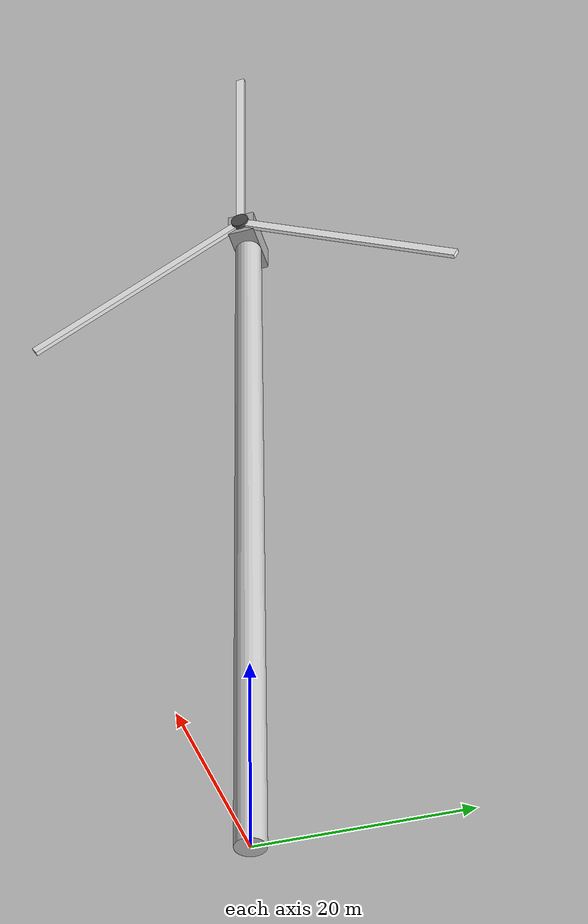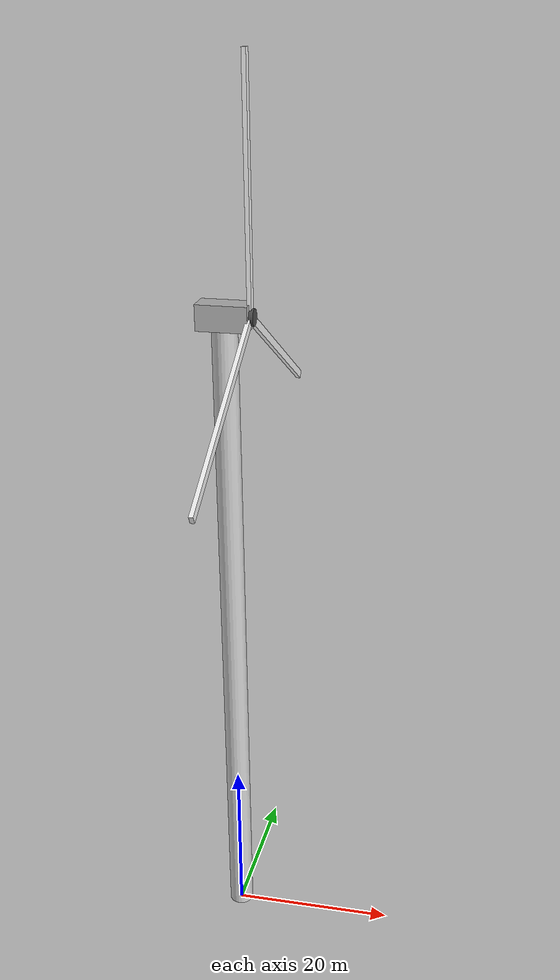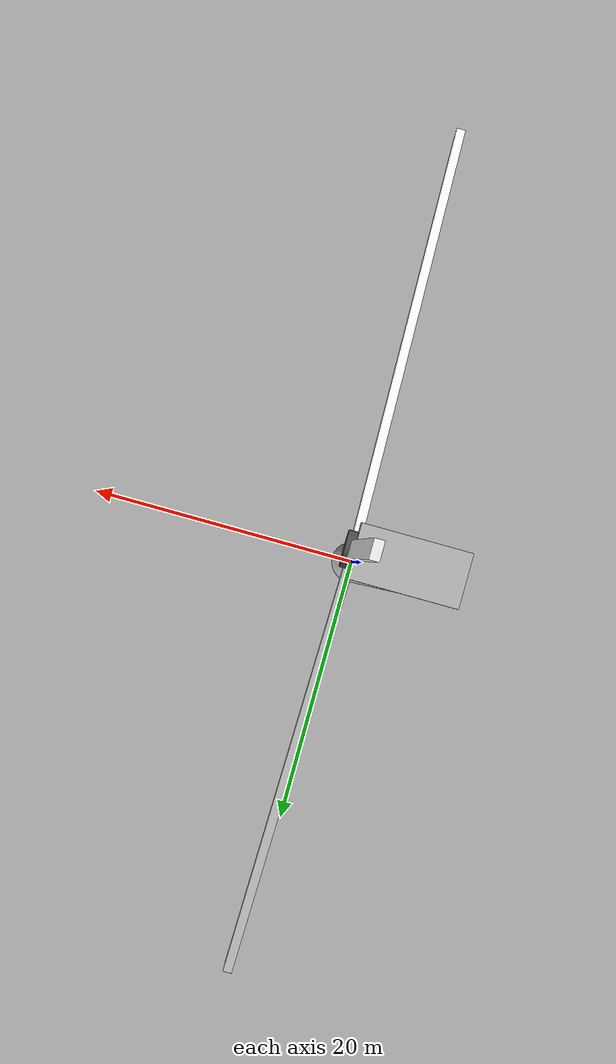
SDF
<?xml version="1.0"?>
<sdf version="1.9">
  <model name="wind_turbine80m">
    <!-- blade=28 -->
    <!-- hub_height=80 -->
    <pose>0 0 0 0 0 0</pose>
    <static>false</static>

    <!-- ===================== TORRE ===================== -->
    <link name="tower">
      <!-- x=0 y=0 z=hub_height/2 -->
      <pose>0 0 40 0 0 0</pose> <!-- Centro a mitad de altura -->
      <inertial>
        <!-- Masa muy alta para hacerla prácticamente inamovible -->
        <mass>100000</mass>
        <inertia>
          <ixx>83333333</ixx>
          <iyy>83333333</iyy>
          <izz>1000</izz>
        </inertia>
      </inertial>
      <!-- Colisión activa - el dron detectará el choque pero la torre no se moverá -->
      <collision name="collision">
        <geometry>
          <cylinder>
            <radius>1.5</radius>
            <length>80</length>
          </cylinder>
        </geometry>
        <surface>
          <friction>
            <ode>
              <mu>1.0</mu>
              <mu2>1.0</mu2>
            </ode>
          </friction>
          <contact>
            <ode>
              <kp>1000000.0</kp>  <!-- Rigidez muy alta -->
              <kd>100.0</kd>       <!-- Amortiguamiento -->
              <max_vel>0.01</max_vel>
              <min_depth>0.001</min_depth>
            </ode>
          </contact>
        </surface>
      </collision>
      <visual name="visual">
        <geometry>
          <cylinder>
            <radius>1.5</radius>
            <length>80</length>
          </cylinder>
        </geometry>
        <material>
          <ambient>0.8 0.8 0.8 1</ambient>
          <diffuse>0.8 0.8 0.8 1</diffuse>
        </material>
      </visual>
    </link>

    <!-- ===================== GÓNDOLA (Nacelle) ===================== -->
    <link name="nacelle">
      <!-- x=0 y=0 z=hub_height + 1.5 -->
      <pose>0 0 81.5 0 0 0</pose> <!-- Encima de la torre -->
      <inertial>
        <!-- Masa alta para estabilidad -->
        <mass>5000</mass>
        <inertia>
          <ixx>833.33</ixx>
          <iyy>833.33</iyy>
          <izz>833.33</izz>
        </inertia>
      </inertial>
      <!-- Colisión activa - detecta choques pero no se mueve -->
      <collision name="collision">
        <geometry>
          <box>
            <size>6 3 3</size>
          </box>
        </geometry>
        <surface>
          <friction>
            <ode>
              <mu>1.0</mu>
              <mu2>1.0</mu2>
            </ode>
          </friction>
          <contact>
            <ode>
              <kp>1000000.0</kp>
              <kd>100.0</kd>
              <max_vel>0.01</max_vel>
              <min_depth>0.001</min_depth>
            </ode>
          </contact>
        </surface>
      </collision>
      <visual name="visual">
        <geometry>
          <box>
            <size>6 3 3</size>
          </box>
        </geometry>
        <material>
          <ambient>0.7 0.7 0.7 1</ambient>
          <diffuse>0.7 0.7 0.7 1</diffuse>
        </material>
      </visual>
    </link>

    <!-- ===================== ROTOR (Hub + 3 Aspas como un solo cuerpo) ===================== -->
    <link name="rotor">
      <!-- x=3 y=0 z=hub_height + 1.5 -->
      <pose >3 0 81.5 0 0 0</pose> <!-- Delante de góndola-->
      <inertial>
        <!-- Masa total: hub(50) + 3 aspas(20*3) = 110 kg -->
        <mass>110</mass>
        <inertia>
          <!-- Inercia aproximada del conjunto rotor -->
          <ixx>42</ixx>
          <iyy>800</iyy>  <!-- Mayor inercia en dirección perpendicular al eje -->
          <izz>800</izz>
          <ixy>0</ixy>
          <ixz>0</ixz>
          <iyz>0</iyz>
        </inertia>
      </inertial>

      <!-- Hub central -->
      <collision name="hub_collision">
        <pose>0 0 0 0 1.5708 0</pose>
        <geometry>
          <cylinder>
            <radius>1</radius>
            <length>1</length>
          </cylinder>
        </geometry>
        <surface>
          <friction>
            <ode>
              <mu>1.0</mu>
              <mu2>1.0</mu2>
            </ode>
          </friction>
          <contact>
            <ode>
              <kp>1000000.0</kp>
              <kd>100.0</kd>
              <max_vel>0.01</max_vel>
              <min_depth>0.001</min_depth>
            </ode>
          </contact>
        </surface>
      </collision>
      <visual name="hub_visual">
        <pose>0 0 0 0 1.5708 0</pose>
        <geometry>
          <cylinder>
            <radius>1</radius>
            <length>1</length>
          </cylinder>
        </geometry>
        <material>
          <ambient>0.3 0.3 0.3 1</ambient>
          <diffuse>0.3 0.3 0.3 1</diffuse>
        </material>
      </visual>

      <!-- Aspa 1 (0°) -->
      <collision name="blade_1_collision">
        <!-- x=0 y=0 z=blade/2 -->
        <pose>0 0 14 0 0 0</pose>
        <geometry>
          <box>
            <size>0.5 1 28.0</size>
          </box>
        </geometry>
        <surface>
          <friction>
            <ode>
              <mu>1.0</mu>
              <mu2>1.0</mu2>
            </ode>
          </friction>
          <contact>
            <ode>
              <kp>1000000.0</kp>
              <kd>100.0</kd>
              <max_vel>0.01</max_vel>
              <min_depth>0.001</min_depth>
            </ode>
          </contact>
        </surface>
      </collision>
      <visual name="blade_1_visual">
        <!-- x=0 y=0 z=blade/2 -->
        <pose>0 0 14 0 0 0</pose>
        <geometry>
          <box>
            <size>0.5 1 28.0</size>
          </box>
        </geometry>
        <material>
          <ambient>0.95 0.95 0.95 1</ambient>
          <diffuse>0.95 0.95 0.95 1</diffuse>
        </material>
      </visual>

      <!-- Aspa 2 (120°) -->
      <collision name="blade_2_collision">
        <!-- x=0 y=-sin(240°)*blade/2 z=cos(240°)*blade/2 -->
        <pose>0 -12.12 -7 2.0944 0 0</pose>  <!-- 120° = 2.0944 rad -->
        <geometry>
          <box>
            <size>0.5 1 28.0</size>
          </box>
        </geometry>
        <surface>
          <friction>
            <ode>
              <mu>1.0</mu>
              <mu2>1.0</mu2>
            </ode>
          </friction>
          <contact>
            <ode>
              <kp>1000000.0</kp>
              <kd>100.0</kd>
              <max_vel>0.01</max_vel>
              <min_depth>0.001</min_depth>
            </ode>
          </contact>
        </surface>
      </collision>
      <visual name="blade_2_visual">
        <!-- x=0 y=-sin(240°)*blade/2 z=cos(240°)*blade/2 -->
        <pose> 0 -12.12 -7 2.0944 0 0</pose>
        <geometry>
          <box>
            <size>0.5 1 28.0</size>
          </box>
        </geometry>
        <material>
          <ambient>0.95 0.95 0.95 1</ambient>
          <diffuse>0.95 0.95 0.95 1</diffuse>
        </material>
      </visual>

      <!-- Aspa 3 (240°) -->
      <collision name="blade_3_collision">
        <!-- x=0 y=-sin(240°)*blade/2 z=cos(240°)*blade/2 -->
        <pose>0  12.12 -7  4.1888 0 0</pose>  <!-- 240° = 4.1888 rad -->
        <geometry>
          <box>
            <size>0.5 1 28.0</size>
          </box>
        </geometry>
        <surface>
          <friction>
            <ode>
              <mu>1.0</mu>
              <mu2>1.0</mu2>
            </ode>
          </friction>
          <contact>
            <ode>
              <kp>1000000.0</kp>
              <kd>100.0</kd>
              <max_vel>0.01</max_vel>
              <min_depth>0.001</min_depth>
            </ode>
          </contact>
        </surface>
      </collision>
      <visual name="blade_3_visual">
        <!-- x=0 y=-sin(240°)*blade/2 z=cos(240°)*blade/2 -->
        <pose>0 12.12 -7  4.1888 0 0</pose>
        <geometry>
          <box>
            <size>0.5 1 28.0</size>
          </box>
        </geometry>
        <material>
          <ambient>0.95 0.95 0.95 1</ambient>
          <diffuse>0.95 0.95 0.95 1</diffuse>
        </material>
      </visual>
    </link>

    <!-- ===================== JOINTS ===================== -->

    <!-- Torre fija al mundo -->
    <joint name="tower_fixed" type="fixed">
      <parent>world</parent>
      <child>tower</child>
    </joint>

    <!-- Góndola rota sobre torre (orientación al viento - yaw) -->
    <joint name="nacelle_yaw_joint" type="revolute">
      <parent>tower</parent>
      <child>nacelle</child>
      <axis>
        <xyz>0 0 1</xyz>
        <limit>
          <lower>-1e16</lower>
          <upper>1e16</upper>
        </limit>
        <dynamics>
          <damping>2</damping>
          <friction>0.1</friction>
        </dynamics>
      </axis>
    </joint>

    <!-- Rotor gira sobre góndola (generación de energía) -->
    <joint name="rotor_joint" type="revolute">
      <parent>nacelle</parent>
      <child>rotor</child>
      <axis>
        <xyz>1 0 0</xyz>  <!-- Eje local del rotor (perpendicular a aspas) -->
        <limit>
          <lower>-1e16</lower>
          <upper>1e16</upper>
        </limit>
        <dynamics>
          <damping>2</damping>
        </dynamics>
      </axis>
    </joint>

    <!-- ===================== PLUGINS ===================== -->

    <!-- Control de velocidad del rotor -->
    <plugin
      filename="gz-sim-joint-controller-system"
      name="gz::sim::systems::JointController">
      <topic>/model/wind_turbine/rotor_speed_cmd</topic>
      <joint_name>rotor_joint</joint_name>
      <use_velocity_commands>true</use_velocity_commands>
      <initial_velocity>1.0</initial_velocity>  <!-- 1 rad/s inicial -->
    </plugin>

    <!-- Control de orientación de la góndola -->
    <plugin
      filename="gz-sim-joint-position-controller-system"
      name="gz::sim::systems::JointPositionController">
      <joint_name>nacelle_yaw_joint</joint_name>
      <topic>/model/wind_turbine/gondola_yaw_cmd</topic>
      <p_gain>10.0</p_gain>
      <i_gain>0.1</i_gain>
      <d_gain>0.5</d_gain>
      <i_max>1.0</i_max>
      <i_min>-1.0</i_min>
      <cmd_max>100</cmd_max>
      <cmd_min>-100</cmd_min>
    </plugin>

  </model>
</sdf>
